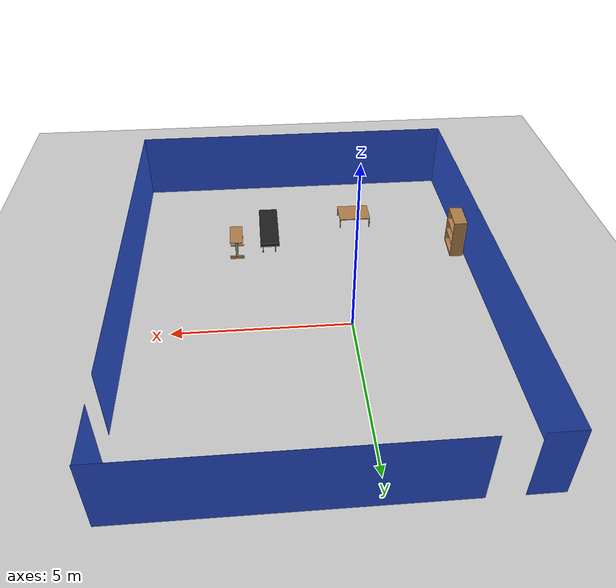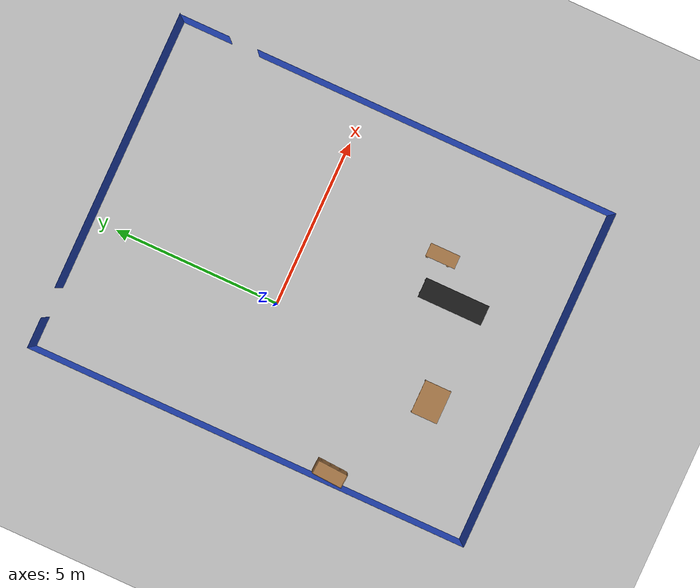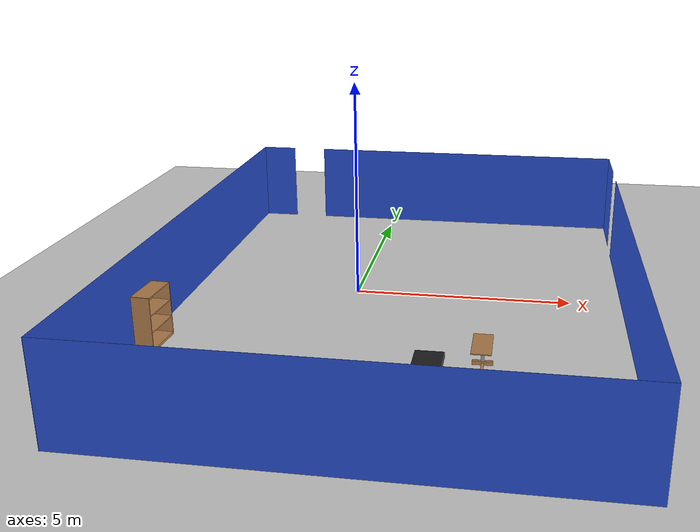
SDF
<sdf version="1.6">
 <world name="default">
  <model name="ground_plane">
   <static>1</static>
   <link name="link">
    <collision name="collision">
     <geometry><plane><normal>0 0 1</normal><size>100 100</size></plane></geometry>
     <surface><friction><ode><mu>100</mu><mu2>50</mu2></ode></friction></surface>
    </collision>
    <visual name="visual">
     <cast_shadows>0</cast_shadows>
     <geometry><plane><normal>0 0 1</normal><size>100 100</size></plane></geometry>
     <material>
      <script><uri>file://media/materials/scripts/gazebo.material</uri><name>Gazebo/Grey</name></script>
     </material>
    </visual>
   </link>
  </model>
  <model name="bed">
   <link name="link">
    <inertial>
     <mass>10</mass>
     <inertia><ixx>1</ixx><ixy>0</ixy><ixz>0</ixz><iyy>1</iyy><iyz>0</iyz><izz>1</izz></inertia>
    </inertial>
    <visual name="cushion">
     <pose>-0.295 -0.975 0.2875 0 -0 0</pose>
     <geometry><box><size>0.59 1.95 0.095</size></box></geometry>
     <material>
      <script>
       <uri>model://base_materials/cloth/scripts</uri>
       <uri>model://base_materials/cloth/textures</uri>
       <name>cloth/black</name>
      </script>
     </material>
    </visual>
    <collision name="collision_cushion">
     <pose>-0.295 -0.975 0.2875 0 -0 0</pose>
     <geometry><box><size>0.59 1.95 0.095</size></box></geometry>
    </collision>
    <visual name="top_frame">
     <pose>-0.295 -0.975 0.225 0 -0 0</pose>
     <geometry><box><size>0.59 1.95 0.03</size></box></geometry>
     <material>
      <script><uri>model://base_materials/color/scripts</uri><name>hsr_color/grey</name></script>
     </material>
    </visual>
    <collision name="collision_top_frame">
     <pose>-0.295 -0.975 0.225 0 -0 0</pose>
     <geometry><box><size>0.59 1.95 0.03</size></box></geometry>
    </collision>
    <visual name="right_front_pole">
     <pose>-0.075 -0.0125 0.125 0 -0 0</pose>
     <geometry><cylinder><radius>0.0125</radius><length>0.17</length></cylinder></geometry>
     <material>
      <script><uri>model://base_materials/color/scripts</uri><name>hsr_color/grey</name></script>
     </material>
    </visual>
    <collision name="collision_right_front_pole">
     <pose>-0.075 -0.0125 0.125 0 -0 0</pose>
     <geometry><cylinder><radius>0.0125</radius><length>0.17</length></cylinder></geometry>
    </collision>
    <visual name="right_front_caster">
     <pose>-0.075 -0.0125 0.02 0 1.57 0</pose>
     <geometry><cylinder><radius>0.02</radius><length>0.04</length></cylinder></geometry>
     <material><script><name>Gazebo/Black</name><uri>__default__</uri></script></material>
    </visual>
    <collision name="collision_right_front_caster">
     <pose>-0.075 -0.0125 0.02 0 1.57 0</pose>
     <geometry><cylinder><radius>0.02</radius><length>0.04</length></cylinder></geometry>
    </collision>
    <visual name="right_back_pole">
     <pose>-0.46 -0.0125 0.125 0 -0 0</pose>
     <geometry><cylinder><radius>0.0125</radius><length>0.17</length></cylinder></geometry>
     <material>
      <script><uri>model://base_materials/color/scripts</uri><name>hsr_color/grey</name></script>
     </material>
    </visual>
    <collision name="collision_right_back_pole">
     <pose>-0.46 -0.0125 0.125 0 -0 0</pose>
     <geometry><cylinder><radius>0.0125</radius><length>0.17</length></cylinder></geometry>
    </collision>
    <visual name="right_back_caster">
     <pose>-0.46 -0.0125 0.02 0 1.57 0</pose>
     <geometry><cylinder><radius>0.02</radius><length>0.04</length></cylinder></geometry>
     <material><script><name>Gazebo/Black</name><uri>__default__</uri></script></material>
    </visual>
    <collision name="collision_back_front_caster">
     <pose>-0.46 -0.0125 0.02 0 1.57 0</pose>
     <geometry><cylinder><radius>0.02</radius><length>0.04</length></cylinder></geometry>
    </collision>
    <visual name="center_front_pole">
     <pose>-0.0425 -0.975 0.105 0 -0 0</pose>
     <geometry><cylinder><radius>0.0125</radius><length>0.21</length></cylinder></geometry>
     <material>
      <script><uri>model://base_materials/color/scripts</uri><name>hsr_color/grey</name></script>
     </material>
    </visual>
    <collision name="collision_center_front_pole">
     <pose>-0.0425 -0.975 0.105 0 -0 0</pose>
     <geometry><cylinder><radius>0.0125</radius><length>0.17</length></cylinder></geometry>
    </collision>
    <visual name="center_back_pole">
     <pose>-0.5475 -0.975 0.105 0 -0 0</pose>
     <geometry><cylinder><radius>0.0125</radius><length>0.21</length></cylinder></geometry>
     <material>
      <script><uri>model://base_materials/color/scripts</uri><name>hsr_color/grey</name></script>
     </material>
    </visual>
    <collision name="collision_center_back_pole">
     <pose>-0.5475 -0.975 0.105 0 -0 0</pose>
     <geometry><cylinder><radius>0.0125</radius><length>0.17</length></cylinder></geometry>
    </collision>
    <visual name="left_front_horizon_pole">
     <pose>-0.01 -1.825 0.06 1.57 -0 0</pose>
     <geometry><cylinder><radius>0.01</radius><length>0.25</length></cylinder></geometry>
     <material>
      <script><uri>model://base_materials/color/scripts</uri><name>hsr_color/grey</name></script>
     </material>
    </visual>
    <collision name="collision_left_front_horizon_pole">
     <pose>-0.01 -1.825 0.06 1.57 -0 0</pose>
     <geometry><cylinder><radius>0.01</radius><length>0.25</length></cylinder></geometry>
    </collision>
    <visual name="left_front_vertical_pole">
     <pose>-0.01 -1.825 0.14 0 -0 0</pose>
     <geometry><cylinder><radius>0.01</radius><length>0.14</length></cylinder></geometry>
     <material>
      <script><uri>model://base_materials/color/scripts</uri><name>hsr_color/grey</name></script>
     </material>
    </visual>
    <collision name="collision_left_front_vertical_pole">
     <pose>-0.01 -1.825 0.14 0 -0 0</pose>
     <geometry><cylinder><radius>0.01</radius><length>0.14</length></cylinder></geometry>
    </collision>
    <visual name="left_front_caster_r">
     <pose>-0.02 -1.725 0.025 0 1.57 0</pose>
     <geometry><cylinder><radius>0.025</radius><length>0.04</length></cylinder></geometry>
     <material><script><name>Gazebo/Black</name><uri>__default__</uri></script></material>
    </visual>
    <collision name="collision_left_front_caster_r">
     <pose>-0.02 -1.725 0.025 0 1.57 0</pose>
     <geometry><cylinder><radius>0.025</radius><length>0.04</length></cylinder></geometry>
    </collision>
    <visual name="left_front_caster_l">
     <pose>-0.02 -1.925 0.025 0 1.57 0</pose>
     <geometry><cylinder><radius>0.025</radius><length>0.04</length></cylinder></geometry>
     <material><script><name>Gazebo/Black</name><uri>__default__</uri></script></material>
    </visual>
    <collision name="collision_left_front_caster_l">
     <pose>-0.02 -1.925 0.025 0 1.57 0</pose>
     <geometry><cylinder><radius>0.025</radius><length>0.04</length></cylinder></geometry>
    </collision>
    <visual name="left_back_horizon_pole">
     <pose>-0.58 -1.825 0.06 1.57 -0 0</pose>
     <geometry><cylinder><radius>0.01</radius><length>0.25</length></cylinder></geometry>
     <material>
      <script><uri>model://base_materials/color/scripts</uri><name>hsr_color/grey</name></script>
     </material>
    </visual>
    <collision name="collision_left_back_horizon_pole">
     <pose>-0.58 -1.825 0.06 1.57 -0 0</pose>
     <geometry><cylinder><radius>0.01</radius><length>0.25</length></cylinder></geometry>
    </collision>
    <visual name="left_back_vertical_pole">
     <pose>-0.58 -1.825 0.14 0 -0 0</pose>
     <geometry><cylinder><radius>0.01</radius><length>0.14</length></cylinder></geometry>
     <material>
      <script><uri>model://base_materials/color/scripts</uri><name>hsr_color/grey</name></script>
     </material>
    </visual>
    <collision name="collision_left_back_vertical_pole">
     <pose>-0.58 -1.825 0.14 0 -0 0</pose>
     <geometry><cylinder><radius>0.01</radius><length>0.14</length></cylinder></geometry>
    </collision>
    <visual name="left_back_caster_r">
     <pose>-0.57 -1.725 0.025 0 1.57 0</pose>
     <geometry><cylinder><radius>0.025</radius><length>0.04</length></cylinder></geometry>
     <material><script><name>Gazebo/Black</name><uri>__default__</uri></script></material>
    </visual>
    <collision name="collision_left_back_caster_r">
     <pose>-0.57 -1.725 0.025 0 1.57 0</pose>
     <geometry><cylinder><radius>0.025</radius><length>0.04</length></cylinder></geometry>
    </collision>
    <visual name="left_back_caster_l">
     <pose>-0.57 -1.925 0.025 0 1.57 0</pose>
     <geometry><cylinder><radius>0.025</radius><length>0.04</length></cylinder></geometry>
     <material><script><name>Gazebo/Black</name><uri>__default__</uri></script></material>
    </visual>
    <collision name="collision_left_back_caster_l">
     <pose>-0.57 -1.925 0.025 0 1.57 0</pose>
     <geometry><cylinder><radius>0.025</radius><length>0.04</length></cylinder></geometry>
    </collision>
    <velocity_decay><linear>0</linear><angular>0</angular></velocity_decay>
   </link>
   <static>1</static>
   <pose>2.43571 -3.54937 0 0 -0 0</pose>
  </model>
  <model name="bookshelf">
   <static>1</static>
   <link name="link">
    <inertial><mass>1</mass></inertial>
    <collision name="back">
     <pose>0 0.005 0.6 0 -0 0</pose>
     <geometry><box><size>0.9 0.01 1.2</size></box></geometry>
    </collision>
    <visual name="visual1">
     <pose>0 0.005 0.6 0 -0 0</pose>
     <geometry><box><size>0.9 0.01 1.2</size></box></geometry>
     <material>
      <script><uri>file://media/materials/scripts/gazebo.material</uri><name>Gazebo/Wood</name></script>
     </material>
    </visual>
    <collision name="left_side">
     <pose>0.45 -0.195 0.6 0 -0 0</pose>
     <geometry><box><size>0.02 0.4 1.2</size></box></geometry>
    </collision>
    <visual name="visual2">
     <pose>0.45 -0.195 0.6 0 -0 0</pose>
     <geometry><box><size>0.02 0.4 1.2</size></box></geometry>
     <material>
      <script><uri>file://media/materials/scripts/gazebo.material</uri><name>Gazebo/Wood</name></script>
     </material>
    </visual>
    <collision name="right_side">
     <pose>-0.45 -0.195 0.6 0 -0 0</pose>
     <geometry><box><size>0.02 0.4 1.2</size></box></geometry>
    </collision>
    <visual name="visual3">
     <pose>-0.45 -0.195 0.6 0 -0 0</pose>
     <geometry><box><size>0.02 0.4 1.2</size></box></geometry>
     <material>
      <script><uri>file://media/materials/scripts/gazebo.material</uri><name>Gazebo/Wood</name></script>
     </material>
    </visual>
    <collision name="bottom">
     <pose>0 -0.195 0.03 0 -0 0</pose>
     <geometry><box><size>0.88 0.4 0.06</size></box></geometry>
    </collision>
    <visual name="visual4">
     <pose>0 -0.195 0.03 0 -0 0</pose>
     <geometry><box><size>0.88 0.4 0.06</size></box></geometry>
     <material>
      <script><uri>file://media/materials/scripts/gazebo.material</uri><name>Gazebo/Wood</name></script>
     </material>
    </visual>
    <collision name="top">
     <pose>0 -0.195 1.19 0 -0 0</pose>
     <geometry><box><size>0.88 0.4 0.02</size></box></geometry>
    </collision>
    <visual name="visual5">
     <pose>0 -0.195 1.19 0 -0 0</pose>
     <geometry><box><size>0.88 0.4 0.02</size></box></geometry>
     <material>
      <script><uri>file://media/materials/scripts/gazebo.material</uri><name>Gazebo/Wood</name></script>
     </material>
    </visual>
    <collision name="low_shelf">
     <pose>0 -0.195 0.43 0 -0 0</pose>
     <geometry><box><size>0.88 0.4 0.02</size></box></geometry>
    </collision>
    <visual name="visual6">
     <pose>0 -0.195 0.43 0 -0 0</pose>
     <geometry><box><size>0.88 0.4 0.02</size></box></geometry>
     <material>
      <script><uri>file://media/materials/scripts/gazebo.material</uri><name>Gazebo/Wood</name></script>
     </material>
    </visual>
    <collision name="high_shelf">
     <pose>0 -0.195 0.8 0 -0 0</pose>
     <geometry><box><size>0.88 0.4 0.02</size></box></geometry>
    </collision>
    <visual name="visual7">
     <pose>0 -0.195 0.8 0 -0 0</pose>
     <geometry><box><size>0.88 0.4 0.02</size></box></geometry>
     <material>
      <script><uri>file://media/materials/scripts/gazebo.material</uri><name>Gazebo/Wood</name></script>
     </material>
    </visual>
   </link>
   <pose>-3.87565 -3.32652 0 0 -0 1.51324</pose>
  </model>
  <model name="table">
   <static>1</static>
   <link name="link">
    <collision name="surface">
     <pose>0 0 0.8 0 -0 0</pose>
     <geometry><box><size>1 0.8 0.03</size></box></geometry>
    </collision>
    <visual name="visual1">
     <pose>0 0 0.8 0 -0 0</pose>
     <geometry><box><size>1 0.8 0.03</size></box></geometry>
     <material>
      <script><uri>file://media/materials/scripts/gazebo.material</uri><name>Gazebo/Wood</name></script>
     </material>
    </visual>
    <collision name="front_left_leg">
     <pose>0.48 0.38 0.4 0 -0 0</pose>
     <geometry><cylinder><radius>0.02</radius><length>0.8</length></cylinder></geometry>
    </collision>
    <visual name="front_left_leg">
     <pose>0.48 0.38 0.4 0 -0 0</pose>
     <geometry><cylinder><radius>0.02</radius><length>0.8</length></cylinder></geometry>
     <material>
      <script><uri>file://media/materials/scripts/gazebo.material</uri><name>Gazebo/Grey</name></script>
     </material>
    </visual>
    <collision name="front_right_leg">
     <pose>0.48 -0.38 0.4 0 -0 0</pose>
     <geometry><cylinder><radius>0.02</radius><length>0.8</length></cylinder></geometry>
    </collision>
    <visual name="front_right_leg">
     <pose>0.48 -0.38 0.4 0 -0 0</pose>
     <geometry><cylinder><radius>0.02</radius><length>0.8</length></cylinder></geometry>
     <material>
      <script><uri>file://media/materials/scripts/gazebo.material</uri><name>Gazebo/Grey</name></script>
     </material>
    </visual>
    <collision name="back_right_leg">
     <pose>-0.48 -0.38 0.4 0 -0 0</pose>
     <geometry><cylinder><radius>0.02</radius><length>0.8</length></cylinder></geometry>
    </collision>
    <visual name="back_right_leg">
     <pose>-0.48 -0.38 0.4 0 -0 0</pose>
     <geometry><cylinder><radius>0.02</radius><length>0.8</length></cylinder></geometry>
     <material>
      <script><uri>file://media/materials/scripts/gazebo.material</uri><name>Gazebo/Grey</name></script>
     </material>
    </visual>
    <collision name="back_left_leg">
     <pose>-0.48 0.38 0.4 0 -0 0</pose>
     <geometry><cylinder><radius>0.02</radius><length>0.8</length></cylinder></geometry>
    </collision>
    <visual name="back_left_leg">
     <pose>-0.48 0.38 0.4 0 -0 0</pose>
     <geometry><cylinder><radius>0.02</radius><length>0.8</length></cylinder></geometry>
     <material>
      <script><uri>file://media/materials/scripts/gazebo.material</uri><name>Gazebo/Grey</name></script>
     </material>
    </visual>
    <velocity_decay><linear>0</linear><angular>0</angular></velocity_decay>
   </link>
   <pose>-0.701888 -5.1258 -0.495043 0 -0 0</pose>
  </model>
  <model name="bed_table">
   <link name="link">
    <inertial>
     <pose>0 0.449 0.001 0 -0 0</pose>
     <mass>10</mass>
     <inertia><ixx>1</ixx><ixy>0</ixy><ixz>0</ixz><iyy>1</iyy><iyz>0</iyz><izz>1</izz></inertia>
    </inertial>
    <visual name="top_board">
     <pose>0 0.449 0.625 0 -0 0</pose>
     <geometry><box><size>0.398 0.898 0.02</size></box></geometry>
     <material>
      <script><uri>model://base_materials/wood/scripts/wood.material</uri><name>base_materials/wood</name></script>
     </material>
    </visual>
    <collision name="collision_top_board">
     <pose>0 0.449 0.625 0 -0 0</pose>
     <geometry><box><size>0.398 0.898 0.02</size></box></geometry>
    </collision>
    <visual name="right_pole">
     <pose>0 0.817 0.3515 0 -0 0</pose>
     <geometry><box><size>0.072 0.094 0.527</size></box></geometry>
     <material>
      <script><uri>model://base_materials/color/scripts</uri><name>hsr_color/grey</name></script>
     </material>
    </visual>
    <collision name="collision_right_pole">
     <pose>0 0.817 0.3515 0 -0 0</pose>
     <geometry><box><size>0.072 0.094 0.527</size></box></geometry>
    </collision>
    <visual name="right_bottom_pole">
     <pose>0 0.8225 0.044 0 -0 0</pose>
     <geometry><box><size>0.42 0.063 0.088</size></box></geometry>
     <material>
      <script><uri>model://base_materials/wood/scripts/wood.material</uri><name>base_materials/wood</name></script>
     </material>
    </visual>
    <collision name="collision_right_bottom_pole">
     <pose>0 0.8225 0.044 0 -0 0</pose>
     <geometry><box><size>0.42 0.063 0.088</size></box></geometry>
    </collision>
    <visual name="bottom_center_pole">
     <pose>0 0.502 0.03 0 -0 0</pose>
     <geometry><box><size>0.06 0.578 0.03</size></box></geometry>
     <material>
      <script><uri>model://base_materials/wood/scripts/wood.material</uri><name>base_materials/wood</name></script>
     </material>
    </visual>
    <collision name="collision_bottom_center_pole">
     <pose>0 0.502 0.03 0 -0 0</pose>
     <geometry><box><size>0.06 0.578 0.03</size></box></geometry>
    </collision>
    <visual name="left_bottom_pole">
     <pose>0 0.18 0.0325 0 -0 0</pose>
     <geometry><box><size>0.418 0.066 0.025</size></box></geometry>
     <material>
      <script><uri>model://base_materials/wood/scripts/wood.material</uri><name>base_materials/wood</name></script>
     </material>
    </visual>
    <collision name="collision_left_bottom_pole">
     <pose>0 0.18 0.0325 0 -0 0</pose>
     <geometry><box><size>0.418 0.066 0.025</size></box></geometry>
    </collision>
    <visual name="marker_0010">
     <pose>0 0.14 0.093 0 -0 0</pose>
     <geometry><box><size>0.09 0.001 0.09</size></box></geometry>
     <material>
      <script>
       <uri>model://bed_table/marker/0010/scripts</uri>
       <uri>model://bed_table/marker/0010/textures</uri>
       <name>Marker/0010</name>
      </script>
     </material>
    </visual>
    <collision name="collision_marker_0010">
     <pose>0 0.14 0.093 0 -0 0</pose>
     <geometry><box><size>0.09 0.001 0.09</size></box></geometry>
    </collision>
    <visual name="marker_0010_back_plate">
     <pose>0 0.146 0.093 0 -0 0</pose>
     <geometry><box><size>0.09 0.01 0.09</size></box></geometry>
     <material>
      <script><uri>model://base_materials/wood/scripts/wood.material</uri><name>base_materials/wood</name></script>
     </material>
    </visual>
    <collision name="collision_marker_0010_back_plate">
     <pose>0 0.146 0.093 0 -0 0</pose>
     <geometry><box><size>0.09 0.01 0.09</size></box></geometry>
    </collision>
    <velocity_decay><linear>0</linear><angular>0</angular></velocity_decay>
   </link>
   <static>1</static>
   <pose>3.17432 -4.14598 0 0 -0 0</pose>
  </model>
  <model name="apartment_wall_collision">
   <link name="link">
    <inertial>
     <mass>50</mass>
     <inertia><ixx>1</ixx><ixy>0</ixy><ixz>0</ixz><iyy>1</iyy><iyz>0</iyz><izz>1</izz></inertia>
    </inertial>
    <visual name="wall_x00y00_x00y15">
     <pose>-0.002 6.59 1.04 0 -0 0</pose>
     <geometry><box><size>0.002 13.2 2.08</size></box></geometry>
     <material>
      <script>
       <uri>model://base_materials/color/scripts</uri>
       <name>hsr_color/cornflowerblue_transparency1</name>
      </script>
     </material>
    </visual>
    <collision name="wall_x00y00_x00y15">
     <pose>-0.002 6.59 1.04 0 -0 0</pose>
     <geometry><box><size>0.002 13.2 2.08</size></box></geometry>
    </collision>
    <visual name="wall_x00y00_x13y00">
     <pose>5.0375 -0.002 1.04 0 -0 0</pose>
     <geometry><box><size>10.08 0.002 2.08</size></box></geometry>
     <material>
      <script>
       <uri>model://base_materials/color/scripts</uri>
       <name>hsr_color/cornflowerblue_transparency1</name>
      </script>
     </material>
    </visual>
    <collision name="wall_x00y00_x13y00">
     <pose>5.0375 -0.002 1.04 0 -0 0</pose>
     <geometry><box><size>10.08 0.002 2.08</size></box></geometry>
    </collision>
    <visual name="wall_x13y00_x13y12">
     <pose>10.077 5.42 1.04 0 -0 0</pose>
     <geometry><box><size>0.002 10.84 2.08</size></box></geometry>
     <material>
      <script>
       <uri>model://base_materials/color/scripts</uri>
       <name>hsr_color/cornflowerblue_transparency1</name>
      </script>
     </material>
    </visual>
    <collision name="wall_x13y00_x13y12">
     <pose>10.077 5.42 1.04 0 -0 0</pose>
     <geometry><box><size>0.002 10.84 2.08</size></box></geometry>
    </collision>
    <visual name="wall_x13y14_x13y16">
     <pose>10.077 12.43 1.04 0 -0 0</pose>
     <geometry><box><size>0.002 1.5 2.08</size></box></geometry>
     <material>
      <script>
       <uri>model://base_materials/color/scripts</uri>
       <name>hsr_color/cornflowerblue_transparency1</name>
      </script>
     </material>
    </visual>
    <collision name="wall_x13y14_x13y16">
     <pose>10.077 12.43 1.04 0 -0 0</pose>
     <geometry><box><size>0.002 1.5 2.08</size></box></geometry>
    </collision>
    <visual name="wall_x00y16_x01y16">
     <pose>0.4525 13.182 1.04 0 -0 0</pose>
     <geometry><box><size>0.904 0.002 2.08</size></box></geometry>
     <material>
      <script>
       <uri>model://base_materials/color/scripts</uri>
       <name>hsr_color/cornflowerblue_transparency1</name>
      </script>
     </material>
    </visual>
    <collision name="wall_x00y16_x01y16">
     <pose>0.4525 13.182 1.04 0 -0 0</pose>
     <geometry><box><size>0.904 0.002 2.08</size></box></geometry>
    </collision>
    <visual name="wall_x03y16_x13y16">
     <pose>5.948 13.182 1.04 0 -0 0</pose>
     <geometry><box><size>8.3 0.002 2.08</size></box></geometry>
     <material>
      <script>
       <uri>model://base_materials/color/scripts</uri>
       <name>hsr_color/cornflowerblue_transparency1</name>
      </script>
     </material>
    </visual>
    <collision name="wall_x03y16_x13y16">
     <pose>5.948 13.182 1.04 0 -0 0</pose>
     <geometry><box><size>8.3 0.002 2.08</size></box></geometry>
    </collision>
    <velocity_decay><linear>0</linear><angular>0</angular></velocity_decay>
   </link>
   <static>1</static>
   <pose>-3.91102 -7.48104 0 0 -0 0</pose>
  </model>
 </world>
</sdf>
